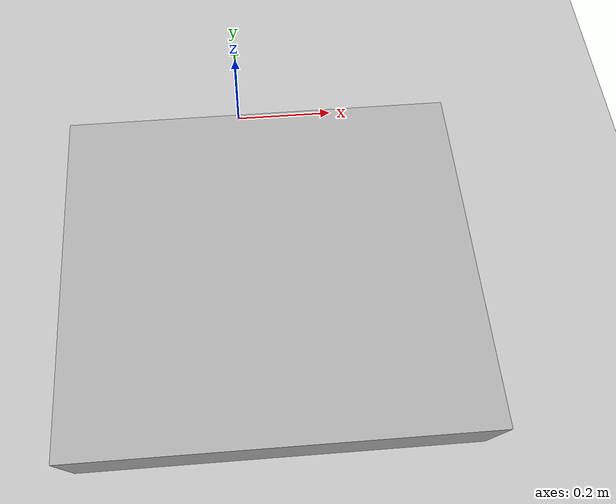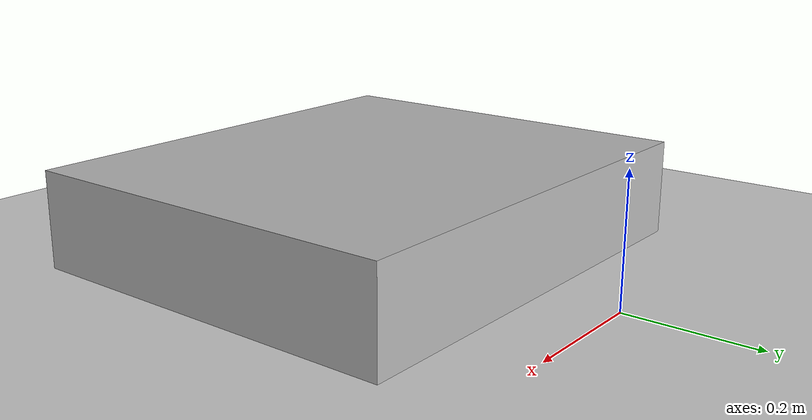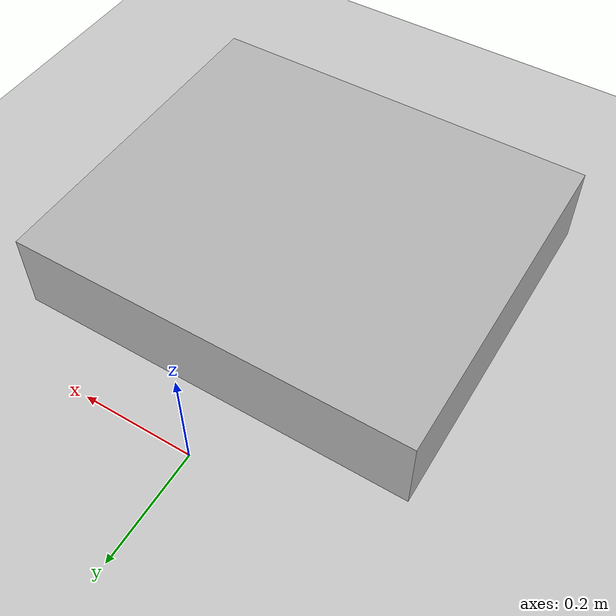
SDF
<?xml version="1.0"?>
<sdf version="1.4">
  <world name="default">
    <include>
      <uri>model://ground_plane</uri>
    </include>
    <include>
      <uri>model://sun</uri>
    </include>
    <model name="my_mesh">
        <pose frame=''>0 0 0 0 0 0</pose>
      <static>true</static>
      <link name="body">
          <pose frame=''>0 -0.410560 -0.198873 0 0 0</pose>
        <visual name="visual">
          <geometry>
            <mesh><uri>file://grid_box.dae</uri></mesh>
          </geometry>
        </visual>
      </link>
    </model>
  </world>
</sdf>
